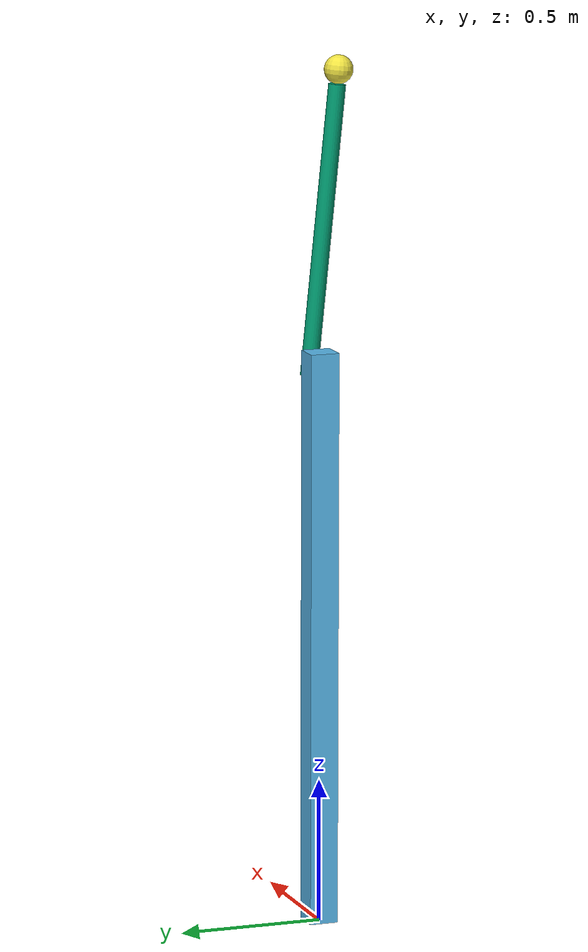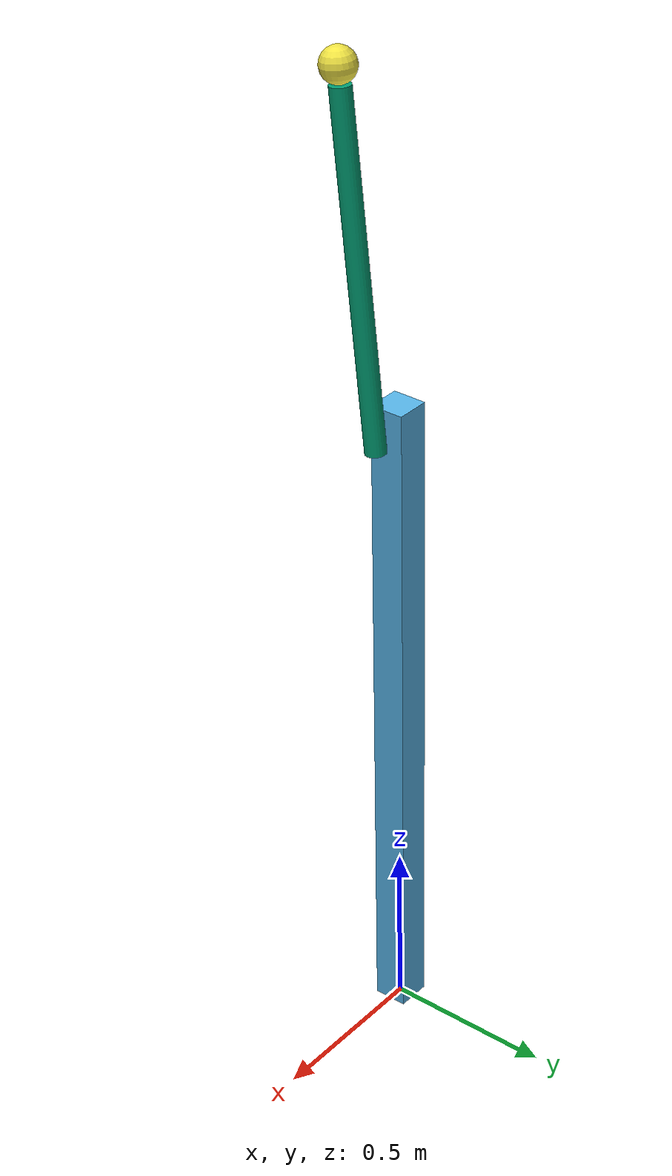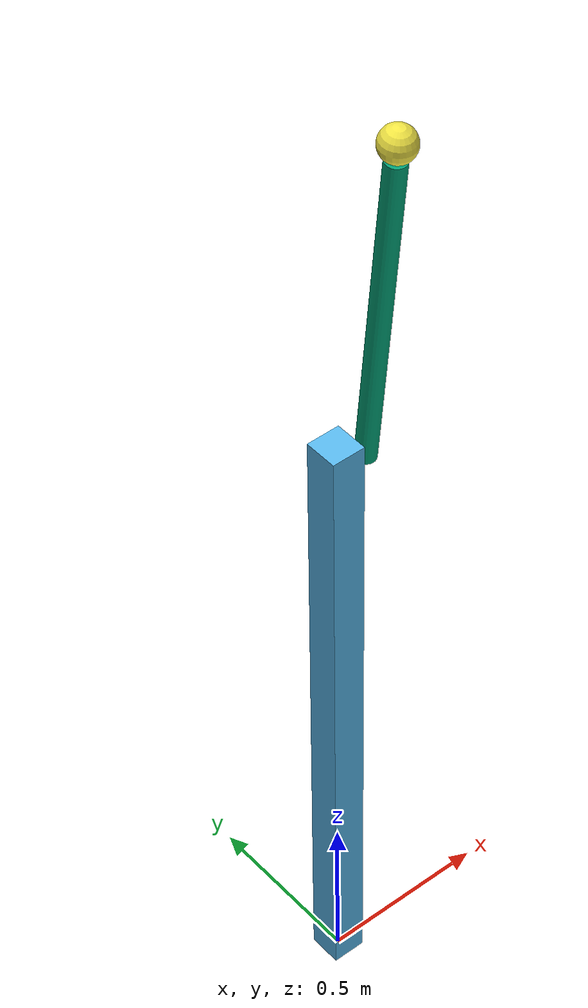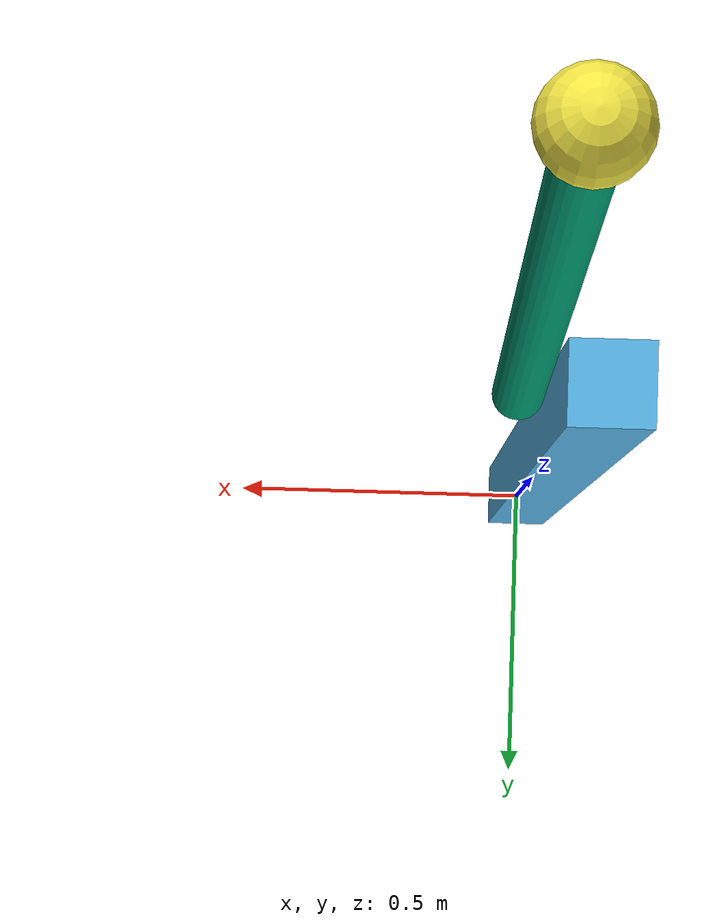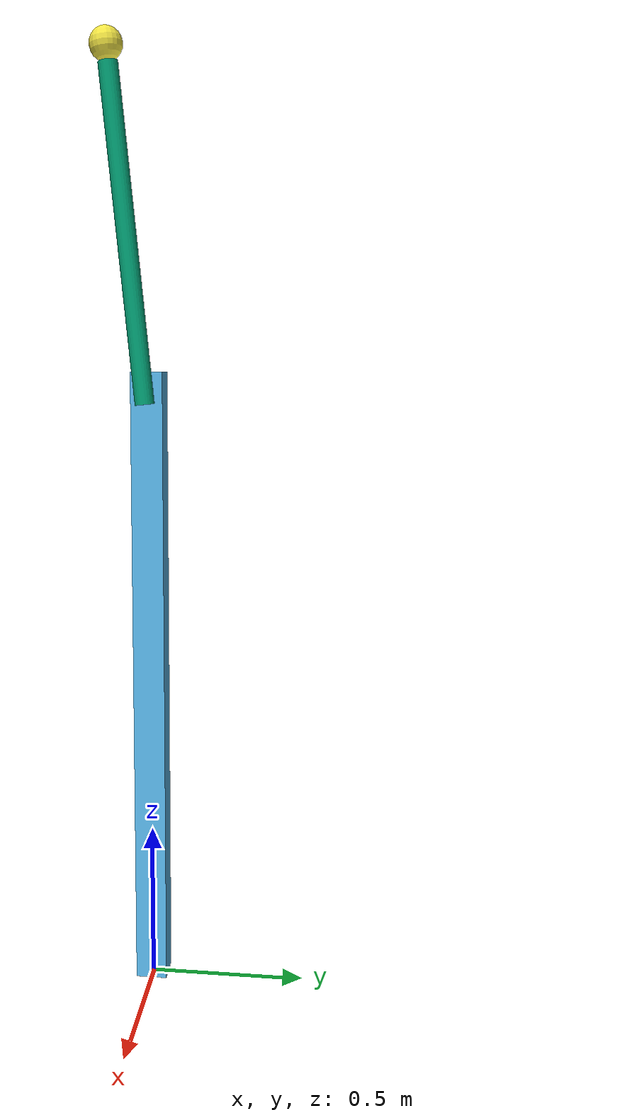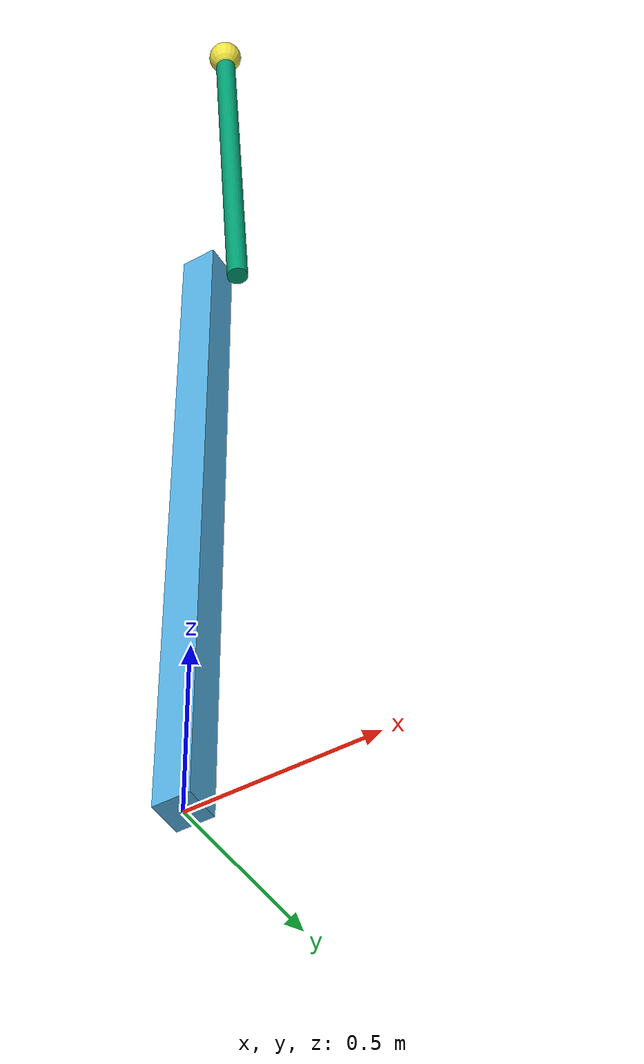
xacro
<?xml version="1.0"?>

<robot name="pendulum_robot" xmlns:xacro="http://www.ros.org/wiki/xacro">

  <xacro:property name="width" value="0.1" />
  <xacro:property name="height_base" value="2" />
  <xacro:property name="height_pole" value="1" />
  <xacro:property name="axle_offset" value="0.05" />
  <xacro:property name="radius" value="0.03" />

  <link name="world"/>

  <link name="base_link">
    <visual>
      <origin xyz="0 0 ${height_base/2}" rpy="0 0 0"/>
      <geometry>
	      <box size="${width} ${width} ${height_base}"/>
      </geometry>
    </visual>
    <collision>
      <origin xyz="0 0 ${height_base/2}" rpy="0 0 0"/>
      <geometry>
	      <box size="${width} ${width} ${height_base}"/>
      </geometry>
    </collision>
    <inertial>
      <origin xyz="0 0 ${height_base/2}" rpy="0 0 0"/>
      <mass value="100"/>
      <inertia
        ixx="1.0" ixy="0.0" ixz="0.0"
        iyy="1.0" iyz="0.0"
        izz="1.0"/>
    </inertial>
  </link>

  <joint name="world_to_base" type="fixed">
    <origin rpy="0 0 0" xyz="0 0 0"/>
    <parent link="world"/>
    <child link="base_link"/>
  </joint>

  <joint name="revolute_joint" type="continuous">
    <parent link="base_link"/>
    <child link="pole_link"/>
    <origin xyz="0.1 0 ${height_base - axle_offset}" rpy="0.1 0 0"/>
    <axis xyz="1 0 0"/>
  </joint>

  <link name="pole_link">
    <visual>
      <origin xyz="0 0 ${height_pole/2 - axle_offset}" rpy="0 0 0"/>
      <geometry>
	      <cylinder length="${height_pole}" radius="${radius}"/>
      </geometry>
    </visual>

    <collision>
      <origin xyz="0 0 ${height_pole/2 - axle_offset}" rpy="0 0 0"/>
      <geometry>
	      <cylinder length="${height_pole}" radius="${radius}"/>
      </geometry>
    </collision>

    <inertial>
      <origin xyz="0 0 ${height_pole/2 - axle_offset}" rpy="0 0 0"/>
      <mass value="1"/>
      <inertia
        ixx="1.0" ixy="0.0" ixz="0.0"
        iyy="1.0" iyz="0.0"
        izz="1.0"/>
    </inertial>
  </link>

  <!-- ball Link -->
  <link name="ball_link">
    <visual>
      <origin xyz="0 0 ${height_pole}" rpy="0 0 0"/>
      <geometry>
        <sphere radius="0.05"/>
      </geometry>
    </visual>

    <collision>
      <origin xyz="0 0 ${height_pole}" rpy="0 0 0"/>
      <geometry>
        <sphere radius="0.05"/>
      </geometry>
    </collision>

    <inertial>
      <origin xyz="0 0 ${height_pole}" rpy="0 0 0"/>
      <mass value="0.5"/>
      <inertia
	  ixx="1.0" ixy="0.0" ixz="0.0"
	  iyy="1.0" iyz="0.0"
	  izz="1.0"/>
    </inertial>
  </link>

  <joint name="fixed_joint" type="fixed">
    <parent link="pole_link"/>
    <child link="ball_link"/>
    <origin xyz="0 0 0" rpy="0 0 0"/>
  </joint>
</robot>
